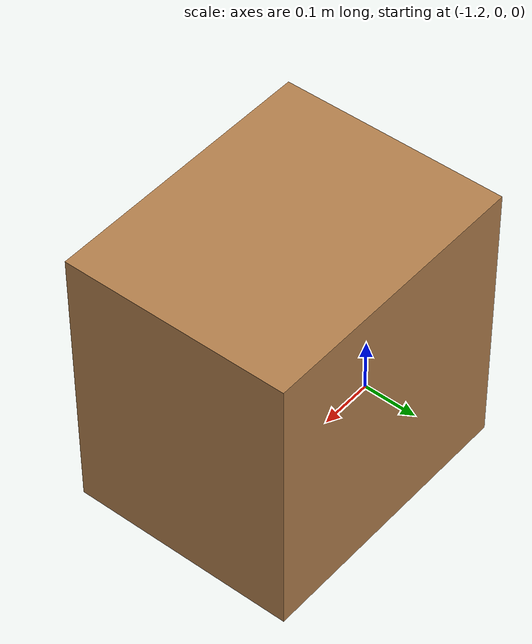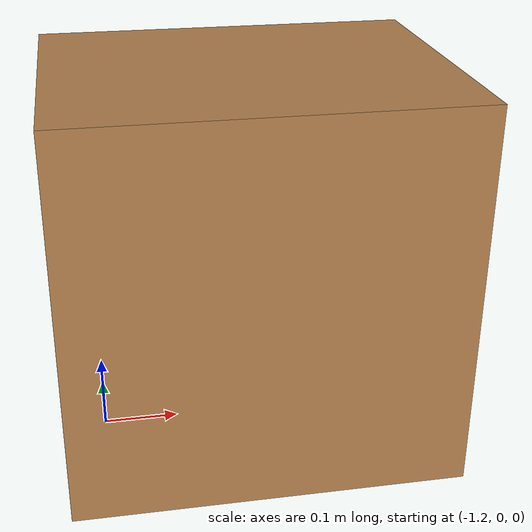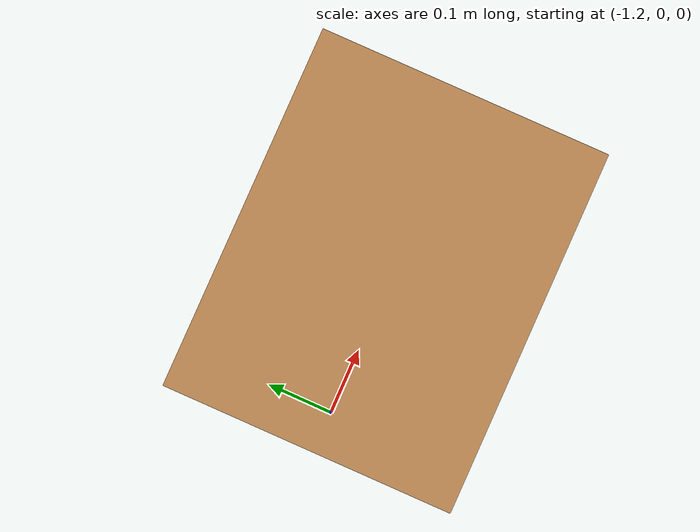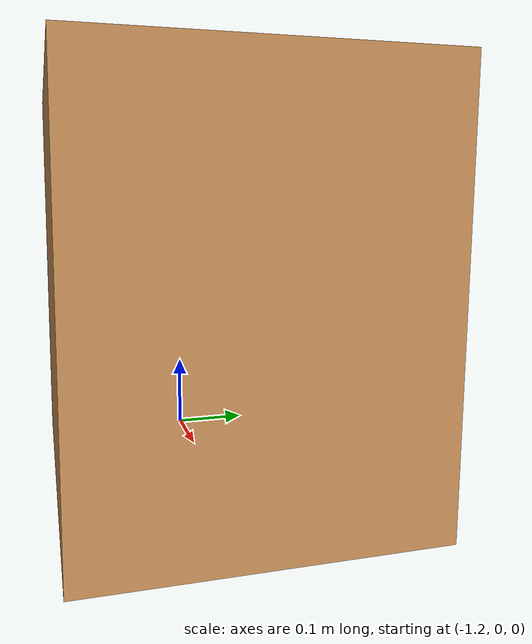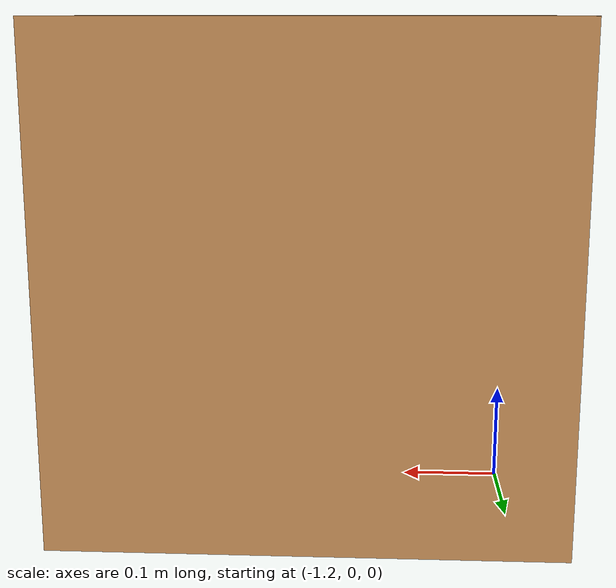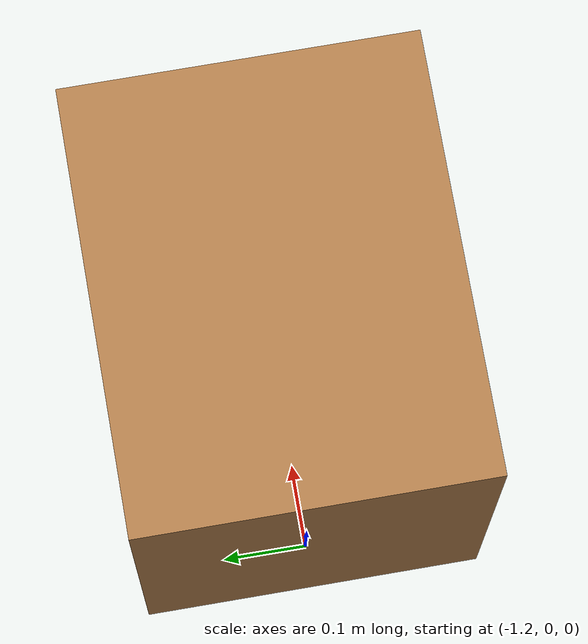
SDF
<sdf version='1.6'>
  <model name='obstacle_vertical'>
    <static>1</static>
    <link name='fourth_box'>
      <collision name='collision'>
        <pose>-1.0 0.0 0.25 0 0 0</pose>
        <geometry>
          <box>
            <size>0.5 0.4 0.5</size>
          </box>
        </geometry>
        <max_contacts>10</max_contacts>
        <surface>
          <contact>
            <ode/>
          </contact>
          <bounce/>
          <friction>
            <torsional>
              <ode/>
            </torsional>
            <ode/>
          </friction>
        </surface>
      </collision>

      <visual name='visual'>
        <pose>-1.0 0.0 0.25 0 0 0</pose>
        <geometry>
          <box>
            <size>0.5 0.4 0.5</size>
          </box>
        </geometry>
        <material>
          <script>
            <uri>file://media/materials/scripts/gazebo.material</uri>
            <name>Gazebo/Wood</name>
          </script>
          <ambient>1 1 1 1</ambient>
        </material>
      </visual>
    </link>

    <plugin name="obstacle_2" filename="libobstacle_2.so"/>
    <allow_auto_disable>1</allow_auto_disable>
  </model>
</sdf>
